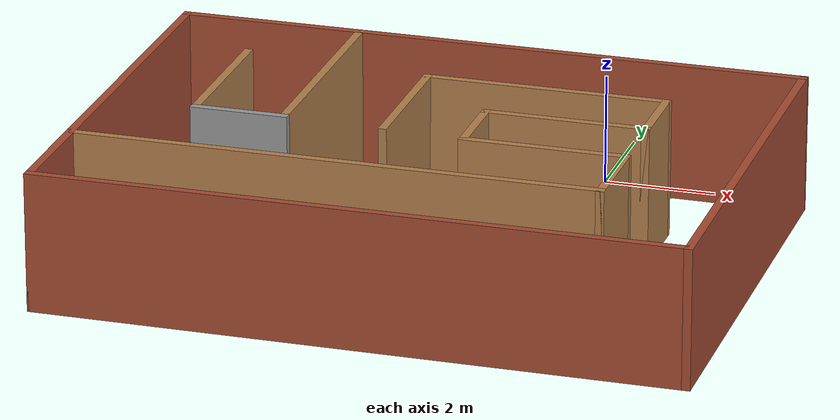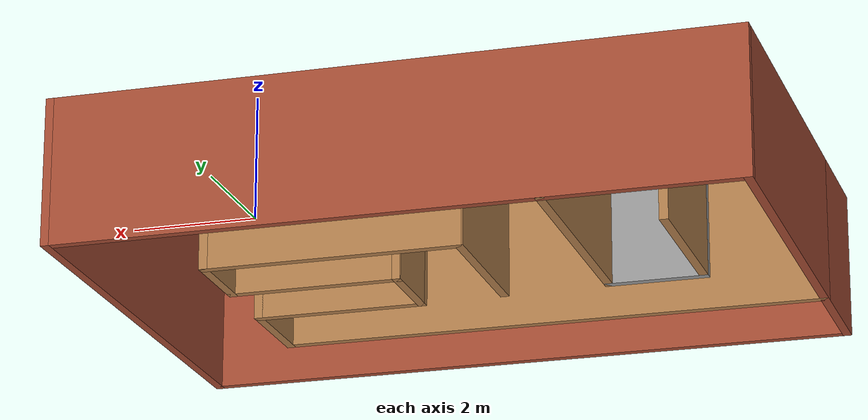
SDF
<?xml version='1.0'?>
<sdf version='1.6'>
  <model name='maze'>
    <pose frame=''>-2.02539 -4.39231 0 0 -0 0</pose>
    <link name='Wall_1'>
      <collision name='Wall_1_Collision'>
        <geometry>
          <box>
            <size>11.5 0.15 2.5</size>
          </box>
        </geometry>
        <pose frame=''>0 0 1.25 0 -0 0</pose>
      </collision>
      <visual name='Wall_1_Visual'>
        <pose frame=''>0 0 1.25 0 -0 0</pose>
        <geometry>
          <box>
            <size>11.5 0.15 2.5</size>
          </box>
        </geometry>
        <material>
          <script>
            <uri>file://media/materials/scripts/gazebo.material</uri>
            <name>Gazebo/Bricks</name>
          </script>
          <ambient>1 1 1 1</ambient>
        </material>
        <meta>
          <layer>0</layer>
        </meta>
      </visual>
      <pose frame=''>-0.015139 -4.055 0 0 -0 0</pose>
    </link>
    <link name='Wall_10'>
      <collision name='Wall_10_Collision'>
        <geometry>
          <box>
            <size>1.5 0.15 2.5</size>
          </box>
        </geometry>
        <pose frame=''>0 0 1.25 0 -0 0</pose>
      </collision>
      <visual name='Wall_10_Visual'>
        <pose frame=''>0 0 1.25 0 -0 0</pose>
        <geometry>
          <box>
            <size>1.5 0.15 2.5</size>
          </box>
        </geometry>
        <material>
          <script>
            <uri>file://media/materials/scripts/gazebo.material</uri>
            <name>Gazebo/Wood</name>
          </script>
          <ambient>1 1 1 1</ambient>
        </material>
        <meta>
          <layer>0</layer>
        </meta>
      </visual>
      <pose frame=''>3.65986 1.58 0 0 -0 1.5708</pose>
    </link>
    <link name='Wall_11'>
      <collision name='Wall_11_Collision'>
        <geometry>
          <box>
            <size>4.42 0.15 2.5</size>
          </box>
        </geometry>
        <pose frame=''>0 0 1.25 0 -0 0</pose>
      </collision>
      <visual name='Wall_11_Visual'>
        <pose frame=''>0 0 1.25 0 -0 0</pose>
        <geometry>
          <box>
            <size>4.42 0.15 2.5</size>
          </box>
        </geometry>
        <material>
          <script>
            <uri>file://media/materials/scripts/gazebo.material</uri>
            <name>Gazebo/Wood</name>
          </script>
          <ambient>1 1 1 1</ambient>
        </material>
        <meta>
          <layer>0</layer>
        </meta>
      </visual>
      <pose frame=''>1.52486 2.255 0 0 -0 3.14159</pose>
    </link>
    <link name='Wall_12'>
      <collision name='Wall_12_Collision'>
        <geometry>
          <box>
            <size>2.75 0.15 2.5</size>
          </box>
        </geometry>
        <pose frame=''>0 0 1.25 0 -0 0</pose>
      </collision>
      <visual name='Wall_12_Visual'>
        <pose frame=''>0 0 1.25 0 -0 0</pose>
        <geometry>
          <box>
            <size>2.75 0.15 2.5</size>
          </box>
        </geometry>
        <material>
          <script>
            <uri>file://media/materials/scripts/gazebo.material</uri>
            <name>Gazebo/Wood</name>
          </script>
          <ambient>1 1 1 1</ambient>
        </material>
        <meta>
          <layer>0</layer>
        </meta>
      </visual>
      <pose frame=''>-0.640139 0.955 0 0 0 -1.5708</pose>
    </link>
    <link name='Wall_14'>
      <collision name='Wall_14_Collision'>
        <geometry>
          <box>
            <size>4.5 0.15 2.5</size>
          </box>
        </geometry>
        <pose frame=''>0 0 1.25 0 -0 0</pose>
      </collision>
      <visual name='Wall_14_Visual'>
        <pose frame=''>0 0 1.25 0 -0 0</pose>
        <geometry>
          <box>
            <size>4.5 0.15 2.5</size>
          </box>
        </geometry>
        <material>
          <script>
            <uri>file://media/materials/scripts/gazebo.material</uri>
            <name>Gazebo/Wood</name>
          </script>
          <ambient>1 1 1 1</ambient>
        </material>
        <meta>
          <layer>0</layer>
        </meta>
      </visual>
      <pose frame=''>-2.44014 1.87 0 0 0 -1.5708</pose>
    </link>
    <link name='Wall_15'>
      <collision name='Wall_15_Collision'>
        <geometry>
          <box>
            <size>1.75 0.15 2.5</size>
          </box>
        </geometry>
        <pose frame=''>0 0 1.25 0 -0 0</pose>
      </collision>
      <visual name='Wall_15_Visual'>
        <pose frame=''>0 0 1.25 0 -0 0</pose>
        <geometry>
          <box>
            <size>1.75 0.15 2.5</size>
          </box>
        </geometry>
        <material>
          <script>
            <uri>file://media/materials/scripts/gazebo.material</uri>
            <name>Gazebo/Grey</name>
          </script>
          <ambient>1 1 1 1</ambient>
        </material>
        <meta>
          <layer>0</layer>
        </meta>
      </visual>
      <pose frame=''>-3.24014 -0.305001 0 0 -0 3.14159</pose>
    </link>
    <link name='Wall_16'>
      <collision name='Wall_16_Collision'>
        <geometry>
          <box>
            <size>3 0.15 2.5</size>
          </box>
        </geometry>
        <pose frame=''>0 0 1.25 0 -0 0</pose>
      </collision>
      <visual name='Wall_16_Visual'>
        <pose frame=''>0 0 1.25 0 -0 0</pose>
        <geometry>
          <box>
            <size>3 0.15 2.5</size>
          </box>
        </geometry>
        <material>
          <script>
            <uri>file://media/materials/scripts/gazebo.material</uri>
            <name>Gazebo/Wood</name>
          </script>
          <ambient>1 1 1 1</ambient>
        </material>
        <meta>
          <layer>0</layer>
        </meta>
      </visual>
      <pose frame=''>-4.04014 1.12 0 0 -0 1.5708</pose>
    </link>
    <link name='Wall_18'>
      <collision name='Wall_18_Collision'>
        <geometry>
          <box>
            <size>2.16 0.15 2.5</size>
          </box>
        </geometry>
        <pose frame=''>0 0 1.25 0 -0 0</pose>
      </collision>
      <visual name='Wall_18_Visual'>
        <pose frame=''>0 0 1.25 0 -0 0</pose>
        <geometry>
          <box>
            <size>2.16 0.15 2.5</size>
          </box>
        </geometry>
        <material>
          <script>
            <uri>file://media/materials/scripts/gazebo.material</uri>
            <name>Gazebo/Bricks</name>
          </script>
          <ambient>1 1 1 1</ambient>
        </material>
        <meta>
          <layer>0</layer>
        </meta>
      </visual>
      <pose frame=''>-5.69014 -3.05 0 0 0 -1.5708</pose>
    </link>
    <link name='Wall_2'>
      <collision name='Wall_2_Collision'>
        <geometry>
          <box>
            <size>8.2605 0.15 2.5</size>
          </box>
        </geometry>
        <pose frame=''>0 0 1.25 0 -0 0</pose>
      </collision>
      <visual name='Wall_2_Visual'>
        <pose frame=''>0 0 1.25 0 -0 0</pose>
        <geometry>
          <box>
            <size>8.2605 0.15 2.5</size>
          </box>
        </geometry>
        <material>
          <script>
            <uri>file://media/materials/scripts/gazebo.material</uri>
            <name>Gazebo/Bricks</name>
          </script>
          <ambient>1 1 1 1</ambient>
        </material>
        <meta>
          <layer>0</layer>
        </meta>
      </visual>
      <pose frame=''>5.67486 0 0 0 -0 1.57449</pose>
    </link>
    <link name='Wall_3'>
      <collision name='Wall_3_Collision'>
        <geometry>
          <box>
            <size>11.5 0.15 2.5</size>
          </box>
        </geometry>
        <pose frame=''>0 0 1.25 0 -0 0</pose>
      </collision>
      <visual name='Wall_3_Visual'>
        <pose frame=''>0 0 1.25 0 -0 0</pose>
        <geometry>
          <box>
            <size>11.5 0.15 2.5</size>
          </box>
        </geometry>
        <material>
          <script>
            <uri>file://media/materials/scripts/gazebo.material</uri>
            <name>Gazebo/Bricks</name>
          </script>
          <ambient>1 1 1 1</ambient>
        </material>
        <meta>
          <layer>0</layer>
        </meta>
      </visual>
      <pose frame=''>-0.015139 4.055 0 0 -0 3.14159</pose>
    </link>
    <link name='Wall_4'>
      <collision name='Wall_4_Collision'>
        <geometry>
          <box>
            <size>6.25 0.15 2.5</size>
          </box>
        </geometry>
        <pose frame=''>0 0 1.25 0 -0 0</pose>
      </collision>
      <visual name='Wall_4_Visual'>
        <pose frame=''>0 0 1.25 0 -0 0</pose>
        <geometry>
          <box>
            <size>6.25 0.15 2.5</size>
          </box>
        </geometry>
        <material>
          <script>
            <uri>file://media/materials/scripts/gazebo.material</uri>
            <name>Gazebo/Bricks</name>
          </script>
          <ambient>1 1 1 1</ambient>
        </material>
        <meta>
          <layer>0</layer>
        </meta>
      </visual>
      <pose frame=''>-5.69014 1.005 0 0 0 -1.5708</pose>
    </link>
    <link name='Wall_5'>
      <collision name='Wall_5_Collision'>
        <geometry>
          <box>
            <size>9.5 0.15 2.5</size>
          </box>
        </geometry>
        <pose frame=''>0 0 1.25 0 -0 0</pose>
      </collision>
      <visual name='Wall_5_Visual'>
        <pose frame=''>0 0 1.25 0 -0 0</pose>
        <geometry>
          <box>
            <size>9.5 0.15 2.5</size>
          </box>
        </geometry>
        <material>
          <script>
            <uri>file://media/materials/scripts/gazebo.material</uri>
            <name>Gazebo/Wood</name>
          </script>
          <ambient>1 1 1 1</ambient>
        </material>
        <meta>
          <layer>0</layer>
        </meta>
      </visual>
      <pose frame=''>-1.01514 -2.045 0 0 -0 0</pose>
    </link>
    <link name='Wall_6'>
      <collision name='Wall_6_Collision'>
        <geometry>
          <box>
            <size>1.75 0.15 2.5</size>
          </box>
        </geometry>
        <pose frame=''>0 0 1.25 0 -0 0</pose>
      </collision>
      <visual name='Wall_6_Visual'>
        <pose frame=''>0 0 1.25 0 -0 0</pose>
        <geometry>
          <box>
            <size>1.75 0.15 2.5</size>
          </box>
        </geometry>
        <material>
          <script>
            <uri>file://media/materials/scripts/gazebo.material</uri>
            <name>Gazebo/Wood</name>
          </script>
          <ambient>1 1 1 1</ambient>
        </material>
        <meta>
          <layer>0</layer>
        </meta>
      </visual>
      <pose frame=''>3.65986 -1.245 0 0 -0 1.5708</pose>
    </link>
    <link name='Wall_7'>
      <collision name='Wall_7_Collision'>
        <geometry>
          <box>
            <size>3 0.15 2.5</size>
          </box>
        </geometry>
        <pose frame=''>0 0 1.25 0 -0 0</pose>
      </collision>
      <visual name='Wall_7_Visual'>
        <pose frame=''>0 0 1.25 0 -0 0</pose>
        <geometry>
          <box>
            <size>3 0.15 2.5</size>
          </box>
        </geometry>
        <material>
          <script>
            <uri>file://media/materials/scripts/gazebo.material</uri>
            <name>Gazebo/Wood</name>
          </script>
          <ambient>1 1 1 1</ambient>
        </material>
        <meta>
          <layer>0</layer>
        </meta>
      </visual>
      <pose frame=''>2.23486 -0.445 0 0 -0 3.14159</pose>
    </link>
    <link name='Wall_8'>
      <collision name='Wall_8_Collision'>
        <geometry>
          <box>
            <size>1.5 0.15 2.5</size>
          </box>
        </geometry>
        <pose frame=''>0 0 1.25 0 -0 0</pose>
      </collision>
      <visual name='Wall_8_Visual'>
        <pose frame=''>0 0 1.25 0 -0 0</pose>
        <geometry>
          <box>
            <size>1.5 0.15 2.5</size>
          </box>
        </geometry>
        <material>
          <script>
            <uri>file://media/materials/scripts/gazebo.material</uri>
            <name>Gazebo/Wood</name>
          </script>
          <ambient>1 1 1 1</ambient>
        </material>
        <meta>
          <layer>0</layer>
        </meta>
      </visual>
      <pose frame=''>0.809861 0.23 0 0 -0 1.5708</pose>
    </link>
    <link name='Wall_9'>
      <collision name='Wall_9_Collision'>
        <geometry>
          <box>
            <size>3 0.15 2.5</size>
          </box>
        </geometry>
        <pose frame=''>0 0 1.25 0 -0 0</pose>
      </collision>
      <visual name='Wall_9_Visual'>
        <pose frame=''>0 0 1.25 0 -0 0</pose>
        <geometry>
          <box>
            <size>3 0.15 2.5</size>
          </box>
        </geometry>
        <material>
          <script>
            <uri>file://media/materials/scripts/gazebo.material</uri>
            <name>Gazebo/Wood</name>
          </script>
          <ambient>1 1 1 1</ambient>
        </material>
        <meta>
          <layer>0</layer>
        </meta>
      </visual>
      <pose frame=''>2.23486 0.905 0 0 -0 0</pose>
    </link>
    <static>1</static>
  </model>
</sdf>
